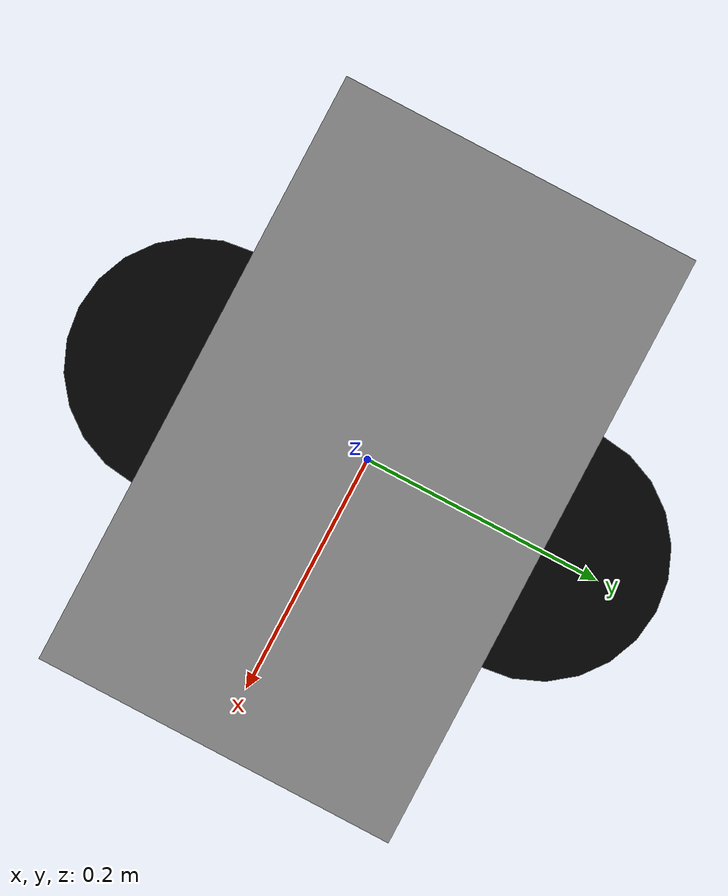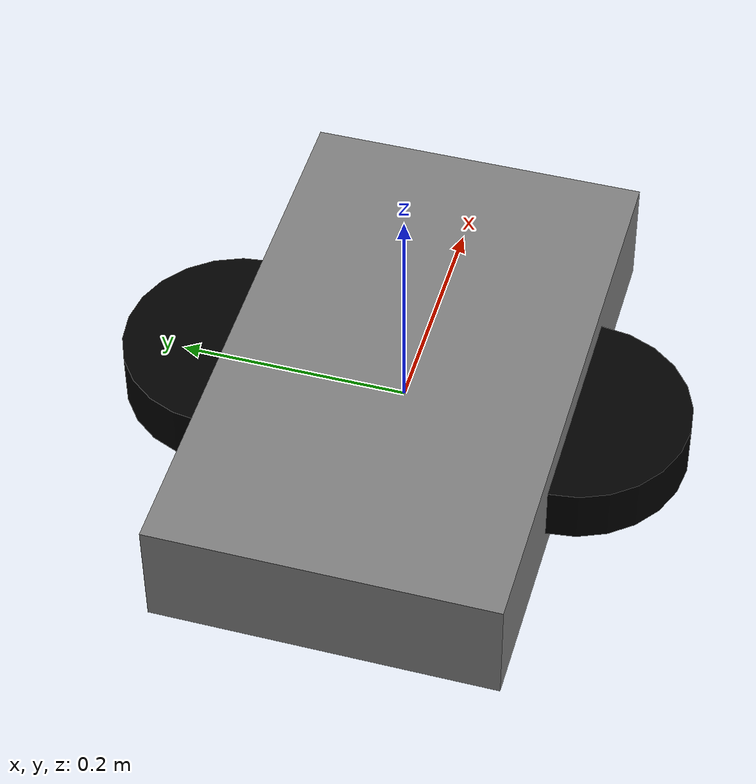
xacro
<?xml version="1.0"?>
<robot xmlns:xacro="http://www.ros.org/wiki/xacro" name="simple_robot">

  <!-- Define constants for reuse -->
  <xacro:property name="wheel_radius" value="0.1"/>
  <xacro:property name="wheel_width" value="0.05"/>
  <xacro:property name="body_length" value="0.5"/>
  <xacro:property name="body_width" value="0.3"/>
  <xacro:property name="body_height" value="0.1"/>

  <!-- Define materials -->
  <material name="black">
    <color rgba="0 0 0 1"/>
  </material>
  <material name="gray">
    <color rgba="0.5 0.5 0.5 1"/>
  </material>

  <!-- Define the base link -->
  <link name="base_link">
    <visual>
      <geometry>
        <box size="${body_length} ${body_width} ${body_height}"/>
      </geometry>
      <material name="gray"/>
    </visual>
    <collision>
      <geometry>
        <box size="${body_length} ${body_width} ${body_height}"/>
      </geometry>
    </collision>
    <inertial>
      <mass value="5.0"/>
      <origin xyz="0 0 0" rpy="0 0 0"/>
      <inertia ixx="0.1" ixy="0.0" ixz="0.0" iyy="0.1" iyz="0.0" izz="0.1"/>
    </inertial>
  </link>

  <!-- Define the wheels -->
  <link name="left_wheel">
    <visual>
      <geometry>
        <cylinder radius="${wheel_radius}" length="${wheel_width}"/>
      </geometry>
      <material name="black"/>
    </visual>
    <collision>
      <geometry>
        <cylinder radius="${wheel_radius}" length="${wheel_width}"/>
      </geometry>
    </collision>
    <inertial>
      <mass value="1.0"/>
      <origin xyz="0 0 0" rpy="0 0 0"/>
      <inertia ixx="0.01" ixy="0.0" ixz="0.0" iyy="0.01" iyz="0.0" izz="0.01"/>
    </inertial>
  </link>

  <link name="right_wheel">
    <visual>
      <geometry>
        <cylinder radius="${wheel_radius}" length="${wheel_width}"/>
      </geometry>
      <material name="black"/>
    </visual>
    <collision>
      <geometry>
        <cylinder radius="${wheel_radius}" length="${wheel_width}"/>
      </geometry>
    </collision>
    <inertial>
      <mass value="1.0"/>
      <origin xyz="0 0 0" rpy="0 0 0"/>
      <inertia ixx="0.01" ixy="0.0" ixz="0.0" iyy="0.01" iyz="0.0" izz="0.01"/>
    </inertial>
  </link>

  <!-- Joints -->
  <joint name="left_wheel_joint" type="continuous">
    <parent link="base_link"/>
    <child link="left_wheel"/>
    <origin xyz="0 ${-body_width/2} 0" rpy="0 0 0"/>
    <axis xyz="0 1 0"/>
    <limit effort="10" velocity="10"/>
  </joint>

  <joint name="right_wheel_joint" type="continuous">
    <parent link="base_link"/>
    <child link="right_wheel"/>
    <origin xyz="0 ${body_width/2} 0" rpy="0 0 0"/>
    <axis xyz="0 1 0"/>
    <limit effort="10" velocity="10"/>
  </joint>

</robot>
